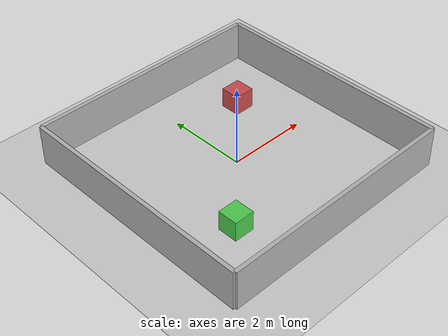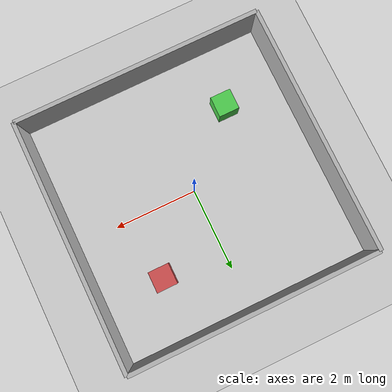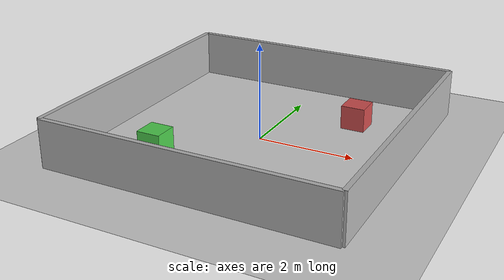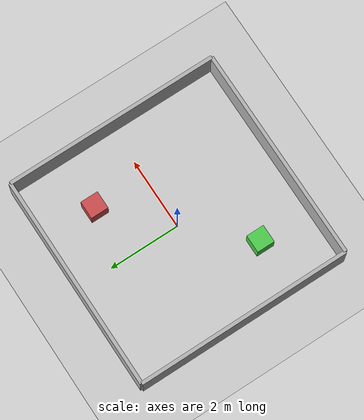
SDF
<?xml version="1.0" ?>
<sdf version="1.6">
  <world name="default">

    <!-- A global light source -->
    <include>
      <uri>model://sun</uri>
    </include>

    <!-- A ground plane -->
    <include>
      <uri>model://ground_plane</uri>
    </include>

    <!-- Physics settings -->
    <physics type="ode">
      <real_time_update_rate>1000.0</real_time_update_rate>
      <max_step_size>0.001</max_step_size>
      <real_time_factor>1</real_time_factor>
    </physics>

    <!-- Simple room with walls for SLAM testing -->

    <!-- Wall 1 - Front -->
    <model name="wall_front">
      <static>true</static>
      <pose>3 0 0.5 0 0 0</pose>
      <link name="link">
        <collision name="collision">
          <geometry>
            <box>
              <size>0.1 6 1</size>
            </box>
          </geometry>
        </collision>
        <visual name="visual">
          <geometry>
            <box>
              <size>0.1 6 1</size>
            </box>
          </geometry>
          <material>
            <ambient>0.7 0.7 0.7 1</ambient>
            <diffuse>0.7 0.7 0.7 1</diffuse>
          </material>
        </visual>
      </link>
    </model>

    <!-- Wall 2 - Back -->
    <model name="wall_back">
      <static>true</static>
      <pose>-3 0 0.5 0 0 0</pose>
      <link name="link">
        <collision name="collision">
          <geometry>
            <box>
              <size>0.1 6 1</size>
            </box>
          </geometry>
        </collision>
        <visual name="visual">
          <geometry>
            <box>
              <size>0.1 6 1</size>
            </box>
          </geometry>
          <material>
            <ambient>0.7 0.7 0.7 1</ambient>
            <diffuse>0.7 0.7 0.7 1</diffuse>
          </material>
        </visual>
      </link>
    </model>

    <!-- Wall 3 - Left -->
    <model name="wall_left">
      <static>true</static>
      <pose>0 3 0.5 0 0 0</pose>
      <link name="link">
        <collision name="collision">
          <geometry>
            <box>
              <size>6 0.1 1</size>
            </box>
          </geometry>
        </collision>
        <visual name="visual">
          <geometry>
            <box>
              <size>6 0.1 1</size>
            </box>
          </geometry>
          <material>
            <ambient>0.7 0.7 0.7 1</ambient>
            <diffuse>0.7 0.7 0.7 1</diffuse>
          </material>
        </visual>
      </link>
    </model>

    <!-- Wall 4 - Right -->
    <model name="wall_right">
      <static>true</static>
      <pose>0 -3 0.5 0 0 0</pose>
      <link name="link">
        <collision name="collision">
          <geometry>
            <box>
              <size>6 0.1 1</size>
            </box>
          </geometry>
        </collision>
        <visual name="visual">
          <geometry>
            <box>
              <size>6 0.1 1</size>
            </box>
          </geometry>
          <material>
            <ambient>0.7 0.7 0.7 1</ambient>
            <diffuse>0.7 0.7 0.7 1</diffuse>
          </material>
        </visual>
      </link>
    </model>

    <!-- Some obstacles for testing -->
    <model name="obstacle_1">
      <static>true</static>
      <pose>1.5 1.5 0.25 0 0 0</pose>
      <link name="link">
        <collision name="collision">
          <geometry>
            <box>
              <size>0.5 0.5 0.5</size>
            </box>
          </geometry>
        </collision>
        <visual name="visual">
          <geometry>
            <box>
              <size>0.5 0.5 0.5</size>
            </box>
          </geometry>
          <material>
            <ambient>0.8 0.3 0.3 1</ambient>
            <diffuse>0.8 0.3 0.3 1</diffuse>
          </material>
        </visual>
      </link>
    </model>

    <model name="obstacle_2">
      <static>true</static>
      <pose>-1.5 -1.5 0.25 0 0 0</pose>
      <link name="link">
        <collision name="collision">
          <geometry>
            <box>
              <size>0.5 0.5 0.5</size>
            </box>
          </geometry>
        </collision>
        <visual name="visual">
          <geometry>
            <box>
              <size>0.5 0.5 0.5</size>
            </box>
          </geometry>
          <material>
            <ambient>0.3 0.8 0.3 1</ambient>
            <diffuse>0.3 0.8 0.3 1</diffuse>
          </material>
        </visual>
      </link>
    </model>

  </world>
</sdf>
